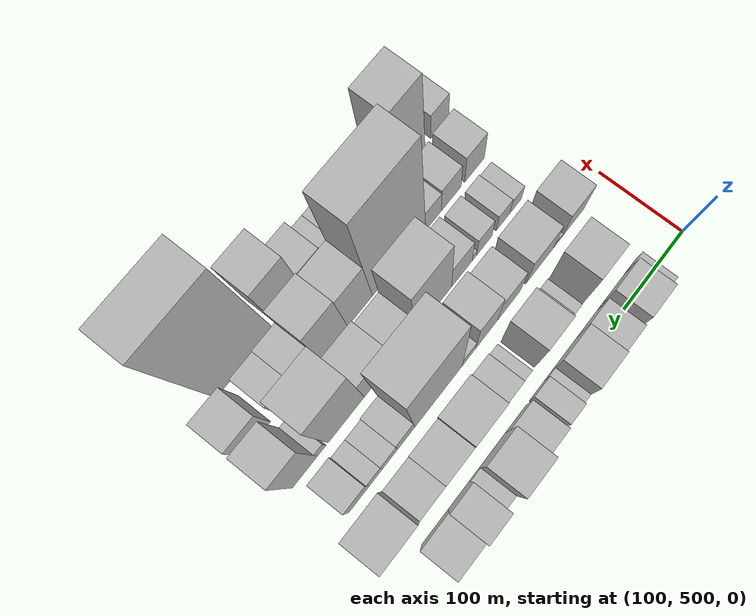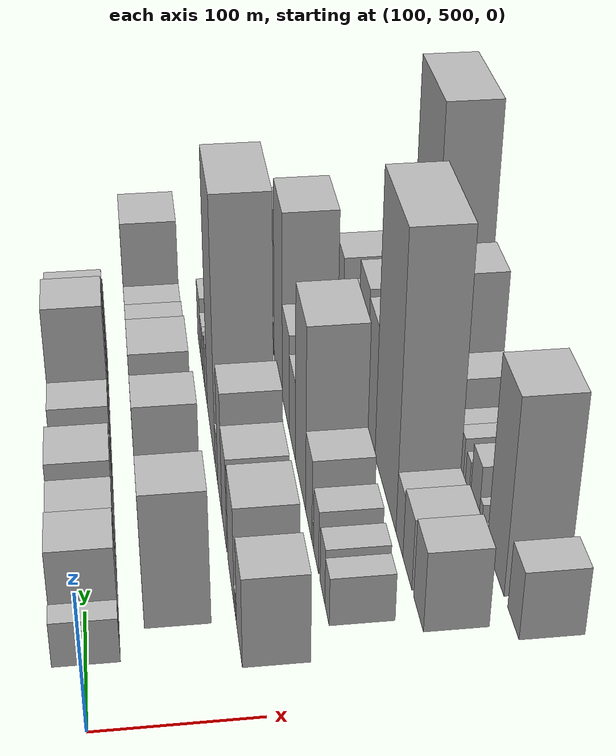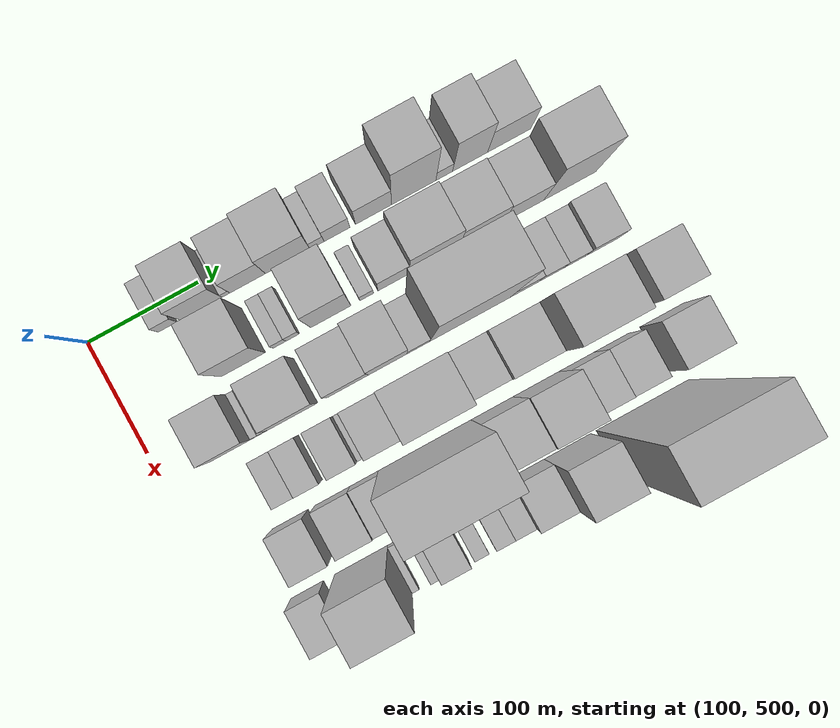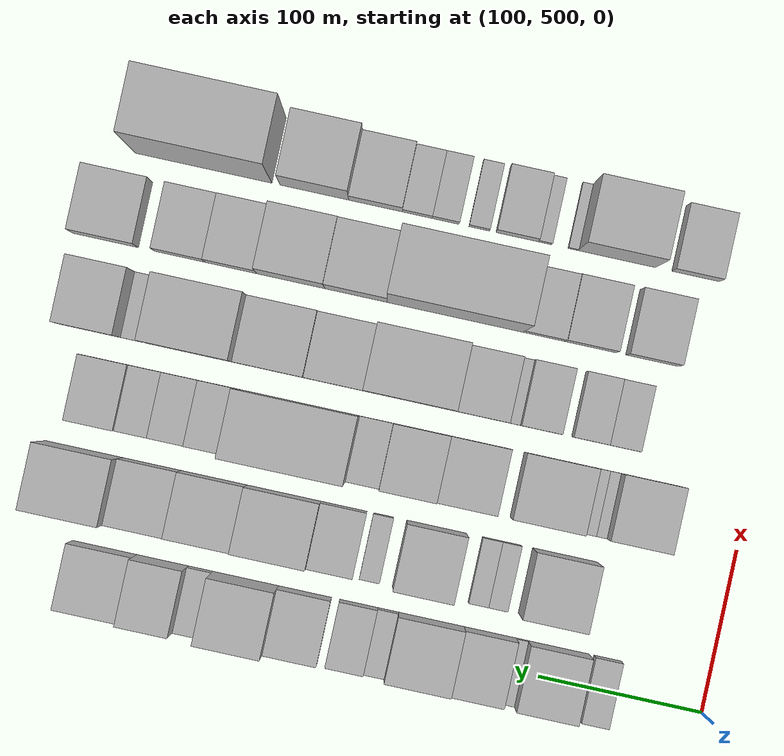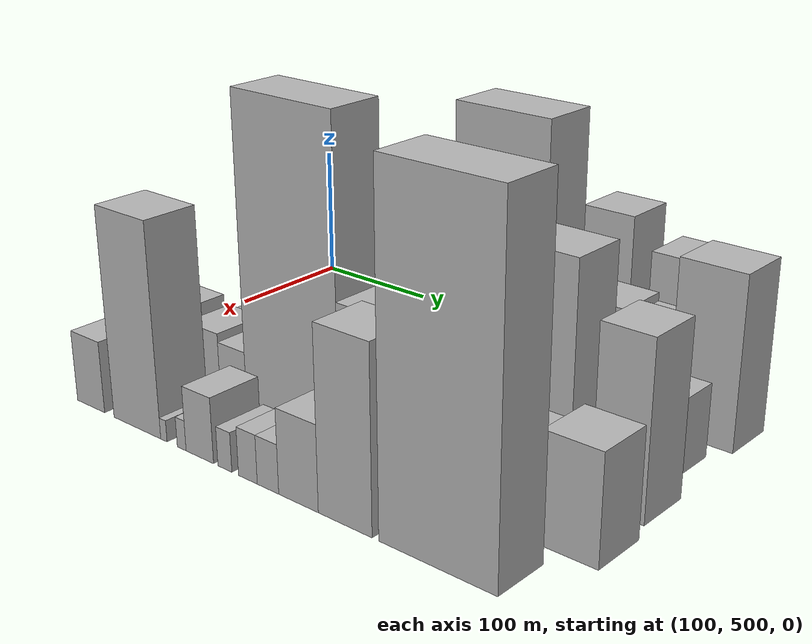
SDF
<sdf version="1.6">
 <world name="default">
  <model name="building_48">
   <static>1</static>
   <pose>100.0000 562.2270 0 0.000000 0.000000 0.000000</pose>
   <link name="link">
    <pose>0 0 16.50 0 0 0</pose>
    <collision name="collision"><geometry><box><size>40.0000 16.8446 33.0000</size></box></geometry></collision>
    <visual name="visual">
     <cast_shadows>0</cast_shadows>
     <geometry><box><size>40.0000 16.8446 33.0000</size></box></geometry>
     <material>
      <script>
       <uri>model://HANNAS_wall/materials/scripts</uri>
       <uri>model://HANNAS_wall/materials/textures</uri>
       <name>vrc/HANNAS_wall</name>
      </script>
     </material>
    </visual>
   </link>
  </model>
  <model name="building_49">
   <static>1</static>
   <pose>100.0000 592.3700 0 0.000000 0.000000 0.000000</pose>
   <link name="link">
    <pose>0 0 34.50 0 0 0</pose>
    <collision name="collision"><geometry><box><size>40.0000 37.4415 69.0000</size></box></geometry></collision>
    <visual name="visual">
     <cast_shadows>0</cast_shadows>
     <geometry><box><size>40.0000 37.4415 69.0000</size></box></geometry>
     <material>
      <script>
       <uri>model://HANNAS_wall/materials/scripts</uri>
       <uri>model://HANNAS_wall/materials/textures</uri>
       <name>vrc/HANNAS_wall</name>
      </script>
     </material>
    </visual>
   </link>
  </model>
  <model name="building_50">
   <static>1</static>
   <pose>100.0000 614.6938 0 0.000000 0.000000 0.000000</pose>
   <link name="link">
    <pose>0 0 7.50 0 0 0</pose>
    <collision name="collision"><geometry><box><size>40.0000 7.2062 15.0000</size></box></geometry></collision>
    <visual name="visual">
     <cast_shadows>0</cast_shadows>
     <geometry><box><size>40.0000 7.2062 15.0000</size></box></geometry>
     <material>
      <script>
       <uri>model://HANNAS_wall/materials/scripts</uri>
       <uri>model://HANNAS_wall/materials/textures</uri>
       <name>vrc/HANNAS_wall</name>
      </script>
     </material>
    </visual>
   </link>
  </model>
  <model name="building_51">
   <static>1</static>
   <pose>100.0000 634.3239 0 0.000000 0.000000 0.000000</pose>
   <link name="link">
    <pose>0 0 31.50 0 0 0</pose>
    <collision name="collision"><geometry><box><size>40.0000 32.0539 63.0000</size></box></geometry></collision>
    <visual name="visual">
     <cast_shadows>0</cast_shadows>
     <geometry><box><size>40.0000 32.0539 63.0000</size></box></geometry>
     <material>
      <script>
       <uri>model://HANNAS_wall/materials/scripts</uri>
       <uri>model://HANNAS_wall/materials/textures</uri>
       <name>vrc/HANNAS_wall</name>
      </script>
     </material>
    </visual>
   </link>
  </model>
  <model name="building_52">
   <static>1</static>
   <pose>100.0000 670.5384 0 0.000000 0.000000 0.000000</pose>
   <link name="link">
    <pose>0 0 37.50 0 0 0</pose>
    <collision name="collision"><geometry><box><size>40.0000 40.3753 75.0000</size></box></geometry></collision>
    <visual name="visual">
     <cast_shadows>0</cast_shadows>
     <geometry><box><size>40.0000 40.3753 75.0000</size></box></geometry>
     <material>
      <script>
       <uri>model://HANNAS_wall/materials/scripts</uri>
       <uri>model://HANNAS_wall/materials/textures</uri>
       <name>vrc/HANNAS_wall</name>
      </script>
     </material>
    </visual>
   </link>
  </model>
  <model name="building_53">
   <static>1</static>
   <pose>100.0000 697.0407 0 0.000000 0.000000 0.000000</pose>
   <link name="link">
    <pose>0 0 13.50 0 0 0</pose>
    <collision name="collision"><geometry><box><size>40.0000 12.6293 27.0000</size></box></geometry></collision>
    <visual name="visual">
     <cast_shadows>0</cast_shadows>
     <geometry><box><size>40.0000 12.6293 27.0000</size></box></geometry>
     <material>
      <script>
       <uri>model://HANNAS_wall/materials/scripts</uri>
       <uri>model://HANNAS_wall/materials/textures</uri>
       <name>vrc/HANNAS_wall</name>
      </script>
     </material>
    </visual>
   </link>
  </model>
  <model name="building_54">
   <static>1</static>
   <pose>100.0000 715.0363 0 0.000000 0.000000 0.000000</pose>
   <link name="link">
    <pose>0 0 22.50 0 0 0</pose>
    <collision name="collision"><geometry><box><size>40.0000 23.3619 45.0000</size></box></geometry></collision>
    <visual name="visual">
     <cast_shadows>0</cast_shadows>
     <geometry><box><size>40.0000 23.3619 45.0000</size></box></geometry>
     <material>
      <script>
       <uri>model://HANNAS_wall/materials/scripts</uri>
       <uri>model://HANNAS_wall/materials/textures</uri>
       <name>vrc/HANNAS_wall</name>
      </script>
     </material>
    </visual>
   </link>
  </model>
  <model name="building_55">
   <static>1</static>
   <pose>100.0000 747.9944 0 0.000000 0.000000 0.000000</pose>
   <link name="link">
    <pose>0 0 30.00 0 0 0</pose>
    <collision name="collision"><geometry><box><size>40.0000 32.5543 60.0000</size></box></geometry></collision>
    <visual name="visual">
     <cast_shadows>0</cast_shadows>
     <geometry><box><size>40.0000 32.5543 60.0000</size></box></geometry>
     <material>
      <script>
       <uri>model://HANNAS_wall/materials/scripts</uri>
       <uri>model://HANNAS_wall/materials/textures</uri>
       <name>vrc/HANNAS_wall</name>
      </script>
     </material>
    </visual>
   </link>
  </model>
  <model name="building_56">
   <static>1</static>
   <pose>100.0000 784.3968 0 0.000000 0.000000 0.000000</pose>
   <link name="link">
    <pose>0 0 58.50 0 0 0</pose>
    <collision name="collision"><geometry><box><size>40.0000 40.2505 117.0000</size></box></geometry></collision>
    <visual name="visual">
     <cast_shadows>0</cast_shadows>
     <geometry><box><size>40.0000 40.2505 117.0000</size></box></geometry>
     <material>
      <script>
       <uri>model://HANNAS_wall/materials/scripts</uri>
       <uri>model://HANNAS_wall/materials/textures</uri>
       <name>vrc/HANNAS_wall</name>
      </script>
     </material>
    </visual>
   </link>
  </model>
  <model name="building_57">
   <static>1</static>
   <pose>100.0000 812.0516 0 0.000000 0.000000 0.000000</pose>
   <link name="link">
    <pose>0 0 15.00 0 0 0</pose>
    <collision name="collision"><geometry><box><size>40.0000 15.0590 30.0000</size></box></geometry></collision>
    <visual name="visual">
     <cast_shadows>0</cast_shadows>
     <geometry><box><size>40.0000 15.0590 30.0000</size></box></geometry>
     <material>
      <script>
       <uri>model://HANNAS_wall/materials/scripts</uri>
       <uri>model://HANNAS_wall/materials/textures</uri>
       <name>vrc/HANNAS_wall</name>
      </script>
     </material>
    </visual>
   </link>
  </model>
  <model name="building_58">
   <static>1</static>
   <pose>100.0000 835.4757 0 0.000000 0.000000 0.000000</pose>
   <link name="link">
    <pose>0 0 48.00 0 0 0</pose>
    <collision name="collision"><geometry><box><size>40.0000 31.7892 96.0000</size></box></geometry></collision>
    <visual name="visual">
     <cast_shadows>0</cast_shadows>
     <geometry><box><size>40.0000 31.7892 96.0000</size></box></geometry>
     <material>
      <script>
       <uri>model://HANNAS_wall/materials/scripts</uri>
       <uri>model://HANNAS_wall/materials/textures</uri>
       <name>vrc/HANNAS_wall</name>
      </script>
     </material>
    </visual>
   </link>
  </model>
  <model name="building_59">
   <static>1</static>
   <pose>100.0000 871.0971 0 0.000000 0.000000 0.000000</pose>
   <link name="link">
    <pose>0 0 33.00 0 0 0</pose>
    <collision name="collision"><geometry><box><size>40.0000 39.4536 66.0000</size></box></geometry></collision>
    <visual name="visual">
     <cast_shadows>0</cast_shadows>
     <geometry><box><size>40.0000 39.4536 66.0000</size></box></geometry>
     <material>
      <script>
       <uri>model://HANNAS_wall/materials/scripts</uri>
       <uri>model://HANNAS_wall/materials/textures</uri>
       <name>vrc/HANNAS_wall</name>
      </script>
     </material>
    </visual>
   </link>
  </model>
  <model name="building_102">
   <static>1</static>
   <pose>155.0000 600.6701 0 0.000000 0.000000 0.000000</pose>
   <link name="link">
    <pose>0 0 49.50 0 0 0</pose>
    <collision name="collision"><geometry><box><size>40.0000 39.4154 99.0000</size></box></geometry></collision>
    <visual name="visual">
     <cast_shadows>0</cast_shadows>
     <geometry><box><size>40.0000 39.4154 99.0000</size></box></geometry>
     <material>
      <script>
       <uri>model://HANNAS_wall/materials/scripts</uri>
       <uri>model://HANNAS_wall/materials/textures</uri>
       <name>vrc/HANNAS_wall</name>
      </script>
     </material>
    </visual>
   </link>
  </model>
  <model name="building_103">
   <static>1</static>
   <pose>155.0000 633.2326 0 0.000000 0.000000 0.000000</pose>
   <link name="link">
    <pose>0 0 13.50 0 0 0</pose>
    <collision name="collision"><geometry><box><size>40.0000 11.7096 27.0000</size></box></geometry></collision>
    <visual name="visual">
     <cast_shadows>0</cast_shadows>
     <geometry><box><size>40.0000 11.7096 27.0000</size></box></geometry>
     <material>
      <script>
       <uri>model://HANNAS_wall/materials/scripts</uri>
       <uri>model://HANNAS_wall/materials/textures</uri>
       <name>vrc/HANNAS_wall</name>
      </script>
     </material>
    </visual>
   </link>
  </model>
  <model name="building_104">
   <static>1</static>
   <pose>155.0000 645.1596 0 0.000000 0.000000 0.000000</pose>
   <link name="link">
    <pose>0 0 13.50 0 0 0</pose>
    <collision name="collision"><geometry><box><size>40.0000 12.1444 27.0000</size></box></geometry></collision>
    <visual name="visual">
     <cast_shadows>0</cast_shadows>
     <geometry><box><size>40.0000 12.1444 27.0000</size></box></geometry>
     <material>
      <script>
       <uri>model://HANNAS_wall/materials/scripts</uri>
       <uri>model://HANNAS_wall/materials/textures</uri>
       <name>vrc/HANNAS_wall</name>
      </script>
     </material>
    </visual>
   </link>
  </model>
  <model name="building_105">
   <static>1</static>
   <pose>155.0000 679.4406 0 0.000000 0.000000 0.000000</pose>
   <link name="link">
    <pose>0 0 52.50 0 0 0</pose>
    <collision name="collision"><geometry><box><size>40.0000 36.4175 105.0000</size></box></geometry></collision>
    <visual name="visual">
     <cast_shadows>0</cast_shadows>
     <geometry><box><size>40.0000 36.4175 105.0000</size></box></geometry>
     <material>
      <script>
       <uri>model://HANNAS_wall/materials/scripts</uri>
       <uri>model://HANNAS_wall/materials/textures</uri>
       <name>vrc/HANNAS_wall</name>
      </script>
     </material>
    </visual>
   </link>
  </model>
  <model name="building_106">
   <static>1</static>
   <pose>155.0000 711.8317 0 0.000000 0.000000 0.000000</pose>
   <link name="link">
    <pose>0 0 13.50 0 0 0</pose>
    <collision name="collision"><geometry><box><size>40.0000 12.3648 27.0000</size></box></geometry></collision>
    <visual name="visual">
     <cast_shadows>0</cast_shadows>
     <geometry><box><size>40.0000 12.3648 27.0000</size></box></geometry>
     <material>
      <script>
       <uri>model://HANNAS_wall/materials/scripts</uri>
       <uri>model://HANNAS_wall/materials/textures</uri>
       <name>vrc/HANNAS_wall</name>
      </script>
     </material>
    </visual>
   </link>
  </model>
  <model name="building_107">
   <static>1</static>
   <pose>155.0000 736.0776 0 0.000000 0.000000 0.000000</pose>
   <link name="link">
    <pose>0 0 27.00 0 0 0</pose>
    <collision name="collision"><geometry><box><size>40.0000 28.1271 54.0000</size></box></geometry></collision>
    <visual name="visual">
     <cast_shadows>0</cast_shadows>
     <geometry><box><size>40.0000 28.1271 54.0000</size></box></geometry>
     <material>
      <script>
       <uri>model://HANNAS_wall/materials/scripts</uri>
       <uri>model://HANNAS_wall/materials/textures</uri>
       <name>vrc/HANNAS_wall</name>
      </script>
     </material>
    </visual>
   </link>
  </model>
  <model name="building_108">
   <static>1</static>
   <pose>155.0000 772.9094 0 0.000000 0.000000 0.000000</pose>
   <link name="link">
    <pose>0 0 43.50 0 0 0</pose>
    <collision name="collision"><geometry><box><size>40.0000 45.5365 87.0000</size></box></geometry></collision>
    <visual name="visual">
     <cast_shadows>0</cast_shadows>
     <geometry><box><size>40.0000 45.5365 87.0000</size></box></geometry>
     <material>
      <script>
       <uri>model://HANNAS_wall/materials/scripts</uri>
       <uri>model://HANNAS_wall/materials/textures</uri>
       <name>vrc/HANNAS_wall</name>
      </script>
     </material>
    </visual>
   </link>
  </model>
  <model name="building_109">
   <static>1</static>
   <pose>155.0000 815.8161 0 0.000000 0.000000 0.000000</pose>
   <link name="link">
    <pose>0 0 37.50 0 0 0</pose>
    <collision name="collision"><geometry><box><size>40.0000 40.2768 75.0000</size></box></geometry></collision>
    <visual name="visual">
     <cast_shadows>0</cast_shadows>
     <geometry><box><size>40.0000 40.2768 75.0000</size></box></geometry>
     <material>
      <script>
       <uri>model://HANNAS_wall/materials/scripts</uri>
       <uri>model://HANNAS_wall/materials/textures</uri>
       <name>vrc/HANNAS_wall</name>
      </script>
     </material>
    </visual>
   </link>
  </model>
  <model name="building_110">
   <static>1</static>
   <pose>155.0000 854.0001 0 0.000000 0.000000 0.000000</pose>
   <link name="link">
    <pose>0 0 34.50 0 0 0</pose>
    <collision name="collision"><geometry><box><size>40.0000 36.0911 69.0000</size></box></geometry></collision>
    <visual name="visual">
     <cast_shadows>0</cast_shadows>
     <geometry><box><size>40.0000 36.0911 69.0000</size></box></geometry>
     <material>
      <script>
       <uri>model://HANNAS_wall/materials/scripts</uri>
       <uri>model://HANNAS_wall/materials/textures</uri>
       <name>vrc/HANNAS_wall</name>
      </script>
     </material>
    </visual>
   </link>
  </model>
  <model name="building_111">
   <static>1</static>
   <pose>155.0000 895.8125 0 0.000000 0.000000 0.000000</pose>
   <link name="link">
    <pose>0 0 60.00 0 0 0</pose>
    <collision name="collision"><geometry><box><size>40.0000 47.5338 120.0000</size></box></geometry></collision>
    <visual name="visual">
     <cast_shadows>0</cast_shadows>
     <geometry><box><size>40.0000 47.5338 120.0000</size></box></geometry>
     <material>
      <script>
       <uri>model://HANNAS_wall/materials/scripts</uri>
       <uri>model://HANNAS_wall/materials/textures</uri>
       <name>vrc/HANNAS_wall</name>
      </script>
     </material>
    </visual>
   </link>
  </model>
  <model name="building_152">
   <static>1</static>
   <pose>210.0000 559.6286 0 0.000000 0.000000 0.000000</pose>
   <link name="link">
    <pose>0 0 33.00 0 0 0</pose>
    <collision name="collision"><geometry><box><size>40.0000 37.8561 66.0000</size></box></geometry></collision>
    <visual name="visual">
     <cast_shadows>0</cast_shadows>
     <geometry><box><size>40.0000 37.8561 66.0000</size></box></geometry>
     <material>
      <script>
       <uri>model://HANNAS_wall/materials/scripts</uri>
       <uri>model://HANNAS_wall/materials/textures</uri>
       <name>vrc/HANNAS_wall</name>
      </script>
     </material>
    </visual>
   </link>
  </model>
  <model name="building_153">
   <static>1</static>
   <pose>210.0000 581.8511 0 0.000000 0.000000 0.000000</pose>
   <link name="link">
    <pose>0 0 7.50 0 0 0</pose>
    <collision name="collision"><geometry><box><size>40.0000 6.5889 15.0000</size></box></geometry></collision>
    <visual name="visual">
     <cast_shadows>0</cast_shadows>
     <geometry><box><size>40.0000 6.5889 15.0000</size></box></geometry>
     <material>
      <script>
       <uri>model://HANNAS_wall/materials/scripts</uri>
       <uri>model://HANNAS_wall/materials/textures</uri>
       <name>vrc/HANNAS_wall</name>
      </script>
     </material>
    </visual>
   </link>
  </model>
  <model name="building_154">
   <static>1</static>
   <pose>210.0000 589.4525 0 0.000000 0.000000 0.000000</pose>
   <link name="link">
    <pose>0 0 9.00 0 0 0</pose>
    <collision name="collision"><geometry><box><size>40.0000 8.6140 18.0000</size></box></geometry></collision>
    <visual name="visual">
     <cast_shadows>0</cast_shadows>
     <geometry><box><size>40.0000 8.6140 18.0000</size></box></geometry>
     <material>
      <script>
       <uri>model://HANNAS_wall/materials/scripts</uri>
       <uri>model://HANNAS_wall/materials/textures</uri>
       <name>vrc/HANNAS_wall</name>
      </script>
     </material>
    </visual>
   </link>
  </model>
  <model name="building_155">
   <static>1</static>
   <pose>210.0000 615.6881 0 0.000000 0.000000 0.000000</pose>
   <link name="link">
    <pose>0 0 37.50 0 0 0</pose>
    <collision name="collision"><geometry><box><size>40.0000 43.8572 75.0000</size></box></geometry></collision>
    <visual name="visual">
     <cast_shadows>0</cast_shadows>
     <geometry><box><size>40.0000 43.8572 75.0000</size></box></geometry>
     <material>
      <script>
       <uri>model://HANNAS_wall/materials/scripts</uri>
       <uri>model://HANNAS_wall/materials/textures</uri>
       <name>vrc/HANNAS_wall</name>
      </script>
     </material>
    </visual>
   </link>
  </model>
  <model name="building_156">
   <static>1</static>
   <pose>210.0000 665.0278 0 0.000000 0.000000 0.000000</pose>
   <link name="link">
    <pose>0 0 36.00 0 0 0</pose>
    <collision name="collision"><geometry><box><size>40.0000 36.8223 72.0000</size></box></geometry></collision>
    <visual name="visual">
     <cast_shadows>0</cast_shadows>
     <geometry><box><size>40.0000 36.8223 72.0000</size></box></geometry>
     <material>
      <script>
       <uri>model://HANNAS_wall/materials/scripts</uri>
       <uri>model://HANNAS_wall/materials/textures</uri>
       <name>vrc/HANNAS_wall</name>
      </script>
     </material>
    </visual>
   </link>
  </model>
  <model name="building_157">
   <static>1</static>
   <pose>210.0000 700.7204 0 0.000000 0.000000 0.000000</pose>
   <link name="link">
    <pose>0 0 48.00 0 0 0</pose>
    <collision name="collision"><geometry><box><size>40.0000 34.5629 96.0000</size></box></geometry></collision>
    <visual name="visual">
     <cast_shadows>0</cast_shadows>
     <geometry><box><size>40.0000 34.5629 96.0000</size></box></geometry>
     <material>
      <script>
       <uri>model://HANNAS_wall/materials/scripts</uri>
       <uri>model://HANNAS_wall/materials/textures</uri>
       <name>vrc/HANNAS_wall</name>
      </script>
     </material>
    </visual>
   </link>
  </model>
  <model name="building_158">
   <static>1</static>
   <pose>210.0000 728.2516 0 0.000000 0.000000 0.000000</pose>
   <link name="link">
    <pose>0 0 18.00 0 0 0</pose>
    <collision name="collision"><geometry><box><size>40.0000 20.4996 36.0000</size></box></geometry></collision>
    <visual name="visual">
     <cast_shadows>0</cast_shadows>
     <geometry><box><size>40.0000 20.4996 36.0000</size></box></geometry>
     <material>
      <script>
       <uri>model://HANNAS_wall/materials/scripts</uri>
       <uri>model://HANNAS_wall/materials/textures</uri>
       <name>vrc/HANNAS_wall</name>
      </script>
     </material>
    </visual>
   </link>
  </model>
  <model name="building_159">
   <static>1</static>
   <pose>210.0000 774.8566 0 0.000000 0.000000 0.000000</pose>
   <link name="link">
    <pose>0 0 103.50 0 0 0</pose>
    <collision name="collision"><geometry><box><size>40.0000 72.7103 207.0000</size></box></geometry></collision>
    <visual name="visual">
     <cast_shadows>0</cast_shadows>
     <geometry><box><size>40.0000 72.7103 207.0000</size></box></geometry>
     <material>
      <script>
       <uri>model://HANNAS_wall/materials/scripts</uri>
       <uri>model://HANNAS_wall/materials/textures</uri>
       <name>vrc/HANNAS_wall</name>
      </script>
     </material>
    </visual>
   </link>
  </model>
  <model name="building_160">
   <static>1</static>
   <pose>210.0000 823.9241 0 0.000000 0.000000 0.000000</pose>
   <link name="link">
    <pose>0 0 24.00 0 0 0</pose>
    <collision name="collision"><geometry><box><size>40.0000 25.4247 48.0000</size></box></geometry></collision>
    <visual name="visual">
     <cast_shadows>0</cast_shadows>
     <geometry><box><size>40.0000 25.4247 48.0000</size></box></geometry>
     <material>
      <script>
       <uri>model://HANNAS_wall/materials/scripts</uri>
       <uri>model://HANNAS_wall/materials/textures</uri>
       <name>vrc/HANNAS_wall</name>
      </script>
     </material>
    </visual>
   </link>
  </model>
  <model name="building_161">
   <static>1</static>
   <pose>210.0000 847.8609 0 0.000000 0.000000 0.000000</pose>
   <link name="link">
    <pose>0 0 19.50 0 0 0</pose>
    <collision name="collision"><geometry><box><size>40.0000 22.4490 39.0000</size></box></geometry></collision>
    <visual name="visual">
     <cast_shadows>0</cast_shadows>
     <geometry><box><size>40.0000 22.4490 39.0000</size></box></geometry>
     <material>
      <script>
       <uri>model://HANNAS_wall/materials/scripts</uri>
       <uri>model://HANNAS_wall/materials/textures</uri>
       <name>vrc/HANNAS_wall</name>
      </script>
     </material>
    </visual>
   </link>
  </model>
  <model name="building_162">
   <static>1</static>
   <pose>210.0000 869.0447 0 0.000000 0.000000 0.000000</pose>
   <link name="link">
    <pose>0 0 19.50 0 0 0</pose>
    <collision name="collision"><geometry><box><size>40.0000 19.9188 39.0000</size></box></geometry></collision>
    <visual name="visual">
     <cast_shadows>0</cast_shadows>
     <geometry><box><size>40.0000 19.9188 39.0000</size></box></geometry>
     <material>
      <script>
       <uri>model://HANNAS_wall/materials/scripts</uri>
       <uri>model://HANNAS_wall/materials/textures</uri>
       <name>vrc/HANNAS_wall</name>
      </script>
     </material>
    </visual>
   </link>
  </model>
  <model name="building_163">
   <static>1</static>
   <pose>210.0000 894.0465 0 0.000000 0.000000 0.000000</pose>
   <link name="link">
    <pose>0 0 25.50 0 0 0</pose>
    <collision name="collision"><geometry><box><size>40.0000 30.0847 51.0000</size></box></geometry></collision>
    <visual name="visual">
     <cast_shadows>0</cast_shadows>
     <geometry><box><size>40.0000 30.0847 51.0000</size></box></geometry>
     <material>
      <script>
       <uri>model://HANNAS_wall/materials/scripts</uri>
       <uri>model://HANNAS_wall/materials/textures</uri>
       <name>vrc/HANNAS_wall</name>
      </script>
     </material>
    </visual>
   </link>
  </model>
  <model name="building_209">
   <static>1</static>
   <pose>265.0000 580.2457 0 0.000000 0.000000 0.000000</pose>
   <link name="link">
    <pose>0 0 18.00 0 0 0</pose>
    <collision name="collision"><geometry><box><size>40.0000 19.4634 36.0000</size></box></geometry></collision>
    <visual name="visual">
     <cast_shadows>0</cast_shadows>
     <geometry><box><size>40.0000 19.4634 36.0000</size></box></geometry>
     <material>
      <script>
       <uri>model://HANNAS_wall/materials/scripts</uri>
       <uri>model://HANNAS_wall/materials/textures</uri>
       <name>vrc/HANNAS_wall</name>
      </script>
     </material>
    </visual>
   </link>
  </model>
  <model name="building_210">
   <static>1</static>
   <pose>265.0000 600.9082 0 0.000000 0.000000 0.000000</pose>
   <link name="link">
    <pose>0 0 21.00 0 0 0</pose>
    <collision name="collision"><geometry><box><size>40.0000 21.8617 42.0000</size></box></geometry></collision>
    <visual name="visual">
     <cast_shadows>0</cast_shadows>
     <geometry><box><size>40.0000 21.8617 42.0000</size></box></geometry>
     <material>
      <script>
       <uri>model://HANNAS_wall/materials/scripts</uri>
       <uri>model://HANNAS_wall/materials/textures</uri>
       <name>vrc/HANNAS_wall</name>
      </script>
     </material>
    </visual>
   </link>
  </model>
  <model name="building_211">
   <static>1</static>
   <pose>265.0000 631.2698 0 0.000000 0.000000 0.000000</pose>
   <link name="link">
    <pose>0 0 24.00 0 0 0</pose>
    <collision name="collision"><geometry><box><size>40.0000 24.8615 48.0000</size></box></geometry></collision>
    <visual name="visual">
     <cast_shadows>0</cast_shadows>
     <geometry><box><size>40.0000 24.8615 48.0000</size></box></geometry>
     <material>
      <script>
       <uri>model://HANNAS_wall/materials/scripts</uri>
       <uri>model://HANNAS_wall/materials/textures</uri>
       <name>vrc/HANNAS_wall</name>
      </script>
     </material>
    </visual>
   </link>
  </model>
  <model name="building_212">
   <static>1</static>
   <pose>265.0000 647.3736 0 0.000000 0.000000 0.000000</pose>
   <link name="link">
    <pose>0 0 9.00 0 0 0</pose>
    <collision name="collision"><geometry><box><size>40.0000 7.3461 18.0000</size></box></geometry></collision>
    <visual name="visual">
     <cast_shadows>0</cast_shadows>
     <geometry><box><size>40.0000 7.3461 18.0000</size></box></geometry>
     <material>
      <script>
       <uri>model://HANNAS_wall/materials/scripts</uri>
       <uri>model://HANNAS_wall/materials/textures</uri>
       <name>vrc/HANNAS_wall</name>
      </script>
     </material>
    </visual>
   </link>
  </model>
  <model name="building_213">
   <static>1</static>
   <pose>265.0000 667.4022 0 0.000000 0.000000 0.000000</pose>
   <link name="link">
    <pose>0 0 31.50 0 0 0</pose>
    <collision name="collision"><geometry><box><size>40.0000 32.7109 63.0000</size></box></geometry></collision>
    <visual name="visual">
     <cast_shadows>0</cast_shadows>
     <geometry><box><size>40.0000 32.7109 63.0000</size></box></geometry>
     <material>
      <script>
       <uri>model://HANNAS_wall/materials/scripts</uri>
       <uri>model://HANNAS_wall/materials/textures</uri>
       <name>vrc/HANNAS_wall</name>
      </script>
     </material>
    </visual>
   </link>
  </model>
  <model name="building_214">
   <static>1</static>
   <pose>265.0000 711.6143 0 0.000000 0.000000 0.000000</pose>
   <link name="link">
    <pose>0 0 70.50 0 0 0</pose>
    <collision name="collision"><geometry><box><size>40.0000 55.7134 141.0000</size></box></geometry></collision>
    <visual name="visual">
     <cast_shadows>0</cast_shadows>
     <geometry><box><size>40.0000 55.7134 141.0000</size></box></geometry>
     <material>
      <script>
       <uri>model://HANNAS_wall/materials/scripts</uri>
       <uri>model://HANNAS_wall/materials/textures</uri>
       <name>vrc/HANNAS_wall</name>
      </script>
     </material>
    </visual>
   </link>
  </model>
  <model name="building_215">
   <static>1</static>
   <pose>265.0000 757.6588 0 0.000000 0.000000 0.000000</pose>
   <link name="link">
    <pose>0 0 31.50 0 0 0</pose>
    <collision name="collision"><geometry><box><size>40.0000 36.3757 63.0000</size></box></geometry></collision>
    <visual name="visual">
     <cast_shadows>0</cast_shadows>
     <geometry><box><size>40.0000 36.3757 63.0000</size></box></geometry>
     <material>
      <script>
       <uri>model://HANNAS_wall/materials/scripts</uri>
       <uri>model://HANNAS_wall/materials/textures</uri>
       <name>vrc/HANNAS_wall</name>
      </script>
     </material>
    </visual>
   </link>
  </model>
  <model name="building_216">
   <static>1</static>
   <pose>265.0000 797.0554 0 0.000000 0.000000 0.000000</pose>
   <link name="link">
    <pose>0 0 39.00 0 0 0</pose>
    <collision name="collision"><geometry><box><size>40.0000 42.4175 78.0000</size></box></geometry></collision>
    <visual name="visual">
     <cast_shadows>0</cast_shadows>
     <geometry><box><size>40.0000 42.4175 78.0000</size></box></geometry>
     <material>
      <script>
       <uri>model://HANNAS_wall/materials/scripts</uri>
       <uri>model://HANNAS_wall/materials/textures</uri>
       <name>vrc/HANNAS_wall</name>
      </script>
     </material>
    </visual>
   </link>
  </model>
  <model name="building_217">
   <static>1</static>
   <pose>265.0000 845.1817 0 0.000000 0.000000 0.000000</pose>
   <link name="link">
    <pose>0 0 75.00 0 0 0</pose>
    <collision name="collision"><geometry><box><size>40.0000 53.8350 150.0000</size></box></geometry></collision>
    <visual name="visual">
     <cast_shadows>0</cast_shadows>
     <geometry><box><size>40.0000 53.8350 150.0000</size></box></geometry>
     <material>
      <script>
       <uri>model://HANNAS_wall/materials/scripts</uri>
       <uri>model://HANNAS_wall/materials/textures</uri>
       <name>vrc/HANNAS_wall</name>
      </script>
     </material>
    </visual>
   </link>
  </model>
  <model name="building_218">
   <static>1</static>
   <pose>265.0000 881.3281 0 0.000000 0.000000 0.000000</pose>
   <link name="link">
    <pose>0 0 13.50 0 0 0</pose>
    <collision name="collision"><geometry><box><size>40.0000 12.4579 27.0000</size></box></geometry></collision>
    <visual name="visual">
     <cast_shadows>0</cast_shadows>
     <geometry><box><size>40.0000 12.4579 27.0000</size></box></geometry>
     <material>
      <script>
       <uri>model://HANNAS_wall/materials/scripts</uri>
       <uri>model://HANNAS_wall/materials/textures</uri>
       <name>vrc/HANNAS_wall</name>
      </script>
     </material>
    </visual>
   </link>
  </model>
  <model name="building_219">
   <static>1</static>
   <pose>265.0000 905.8194 0 0.000000 0.000000 0.000000</pose>
   <link name="link">
    <pose>0 0 58.50 0 0 0</pose>
    <collision name="collision"><geometry><box><size>40.0000 36.5248 117.0000</size></box></geometry></collision>
    <visual name="visual">
     <cast_shadows>0</cast_shadows>
     <geometry><box><size>40.0000 36.5248 117.0000</size></box></geometry>
     <material>
      <script>
       <uri>model://HANNAS_wall/materials/scripts</uri>
       <uri>model://HANNAS_wall/materials/textures</uri>
       <name>vrc/HANNAS_wall</name>
      </script>
     </material>
    </visual>
   </link>
  </model>
  <model name="building_265">
   <static>1</static>
   <pose>320.0000 574.5855 0 0.000000 0.000000 0.000000</pose>
   <link name="link">
    <pose>0 0 30.00 0 0 0</pose>
    <collision name="collision"><geometry><box><size>40.0000 32.1614 60.0000</size></box></geometry></collision>
    <visual name="visual">
     <cast_shadows>0</cast_shadows>
     <geometry><box><size>40.0000 32.1614 60.0000</size></box></geometry>
     <material>
      <script>
       <uri>model://HANNAS_wall/materials/scripts</uri>
       <uri>model://HANNAS_wall/materials/textures</uri>
       <name>vrc/HANNAS_wall</name>
      </script>
     </material>
    </visual>
   </link>
  </model>
  <model name="building_266">
   <static>1</static>
   <pose>320.0000 612.4057 0 0.000000 0.000000 0.000000</pose>
   <link name="link">
    <pose>0 0 27.00 0 0 0</pose>
    <collision name="collision"><geometry><box><size>40.0000 31.4789 54.0000</size></box></geometry></collision>
    <visual name="visual">
     <cast_shadows>0</cast_shadows>
     <geometry><box><size>40.0000 31.4789 54.0000</size></box></geometry>
     <material>
      <script>
       <uri>model://HANNAS_wall/materials/scripts</uri>
       <uri>model://HANNAS_wall/materials/textures</uri>
       <name>vrc/HANNAS_wall</name>
      </script>
     </material>
    </visual>
   </link>
  </model>
  <model name="building_267">
   <static>1</static>
   <pose>320.0000 640.9474 0 0.000000 0.000000 0.000000</pose>
   <link name="link">
    <pose>0 0 24.00 0 0 0</pose>
    <collision name="collision"><geometry><box><size>40.0000 25.6046 48.0000</size></box></geometry></collision>
    <visual name="visual">
     <cast_shadows>0</cast_shadows>
     <geometry><box><size>40.0000 25.6046 48.0000</size></box></geometry>
     <material>
      <script>
       <uri>model://HANNAS_wall/materials/scripts</uri>
       <uri>model://HANNAS_wall/materials/textures</uri>
       <name>vrc/HANNAS_wall</name>
      </script>
     </material>
    </visual>
   </link>
  </model>
  <model name="building_268">
   <static>1</static>
   <pose>320.0000 695.5413 0 0.000000 0.000000 0.000000</pose>
   <link name="link">
    <pose>0 0 111.00 0 0 0</pose>
    <collision name="collision"><geometry><box><size>40.0000 83.5831 222.0000</size></box></geometry></collision>
    <visual name="visual">
     <cast_shadows>0</cast_shadows>
     <geometry><box><size>40.0000 83.5831 222.0000</size></box></geometry>
     <material>
      <script>
       <uri>model://HANNAS_wall/materials/scripts</uri>
       <uri>model://HANNAS_wall/materials/textures</uri>
       <name>vrc/HANNAS_wall</name>
      </script>
     </material>
    </visual>
   </link>
  </model>
  <model name="building_269">
   <static>1</static>
   <pose>320.0000 756.3772 0 0.000000 0.000000 0.000000</pose>
   <link name="link">
    <pose>0 0 52.50 0 0 0</pose>
    <collision name="collision"><geometry><box><size>40.0000 38.0888 105.0000</size></box></geometry></collision>
    <visual name="visual">
     <cast_shadows>0</cast_shadows>
     <geometry><box><size>40.0000 38.0888 105.0000</size></box></geometry>
     <material>
      <script>
       <uri>model://HANNAS_wall/materials/scripts</uri>
       <uri>model://HANNAS_wall/materials/textures</uri>
       <name>vrc/HANNAS_wall</name>
      </script>
     </material>
    </visual>
   </link>
  </model>
  <model name="building_270">
   <static>1</static>
   <pose>320.0000 796.1803 0 0.000000 0.000000 0.000000</pose>
   <link name="link">
    <pose>0 0 55.50 0 0 0</pose>
    <collision name="collision"><geometry><box><size>40.0000 41.5174 111.0000</size></box></geometry></collision>
    <visual name="visual">
     <cast_shadows>0</cast_shadows>
     <geometry><box><size>40.0000 41.5174 111.0000</size></box></geometry>
     <material>
      <script>
       <uri>model://HANNAS_wall/materials/scripts</uri>
       <uri>model://HANNAS_wall/materials/textures</uri>
       <name>vrc/HANNAS_wall</name>
      </script>
     </material>
    </visual>
   </link>
  </model>
  <model name="building_271">
   <static>1</static>
   <pose>320.0000 832.8714 0 0.000000 0.000000 0.000000</pose>
   <link name="link">
    <pose>0 0 31.50 0 0 0</pose>
    <collision name="collision"><geometry><box><size>40.0000 31.8648 63.0000</size></box></geometry></collision>
    <visual name="visual">
     <cast_shadows>0</cast_shadows>
     <geometry><box><size>40.0000 31.8648 63.0000</size></box></geometry>
     <material>
      <script>
       <uri>model://HANNAS_wall/materials/scripts</uri>
       <uri>model://HANNAS_wall/materials/textures</uri>
       <name>vrc/HANNAS_wall</name>
      </script>
     </material>
    </visual>
   </link>
  </model>
  <model name="building_272">
   <static>1</static>
   <pose>320.0000 864.4393 0 0.000000 0.000000 0.000000</pose>
   <link name="link">
    <pose>0 0 30.00 0 0 0</pose>
    <collision name="collision"><geometry><box><size>40.0000 31.2709 60.0000</size></box></geometry></collision>
    <visual name="visual">
     <cast_shadows>0</cast_shadows>
     <geometry><box><size>40.0000 31.2709 60.0000</size></box></geometry>
     <material>
      <script>
       <uri>model://HANNAS_wall/materials/scripts</uri>
       <uri>model://HANNAS_wall/materials/textures</uri>
       <name>vrc/HANNAS_wall</name>
      </script>
     </material>
    </visual>
   </link>
  </model>
  <model name="building_273">
   <static>1</static>
   <pose>320.0000 910.0868 0 0.000000 0.000000 0.000000</pose>
   <link name="link">
    <pose>0 0 36.00 0 0 0</pose>
    <collision name="collision"><geometry><box><size>40.0000 40.0241 72.0000</size></box></geometry></collision>
    <visual name="visual">
     <cast_shadows>0</cast_shadows>
     <geometry><box><size>40.0000 40.0241 72.0000</size></box></geometry>
     <material>
      <script>
       <uri>model://HANNAS_wall/materials/scripts</uri>
       <uri>model://HANNAS_wall/materials/textures</uri>
       <name>vrc/HANNAS_wall</name>
      </script>
     </material>
    </visual>
   </link>
  </model>
  <model name="building_313">
   <static>1</static>
   <pose>375.0000 559.7744 0 0.000000 0.000000 0.000000</pose>
   <link name="link">
    <pose>0 0 25.50 0 0 0</pose>
    <collision name="collision"><geometry><box><size>40.0000 29.2901 51.0000</size></box></geometry></collision>
    <visual name="visual">
     <cast_shadows>0</cast_shadows>
     <geometry><box><size>40.0000 29.2901 51.0000</size></box></geometry>
     <material>
      <script>
       <uri>model://HANNAS_wall/materials/scripts</uri>
       <uri>model://HANNAS_wall/materials/textures</uri>
       <name>vrc/HANNAS_wall</name>
      </script>
     </material>
    </visual>
   </link>
  </model>
  <model name="building_314">
   <static>1</static>
   <pose>375.0000 608.2173 0 0.000000 0.000000 0.000000</pose>
   <link name="link">
    <pose>0 0 73.50 0 0 0</pose>
    <collision name="collision"><geometry><box><size>40.0000 47.5956 147.0000</size></box></geometry></collision>
    <visual name="visual">
     <cast_shadows>0</cast_shadows>
     <geometry><box><size>40.0000 47.5956 147.0000</size></box></geometry>
     <material>
      <script>
       <uri>model://HANNAS_wall/materials/scripts</uri>
       <uri>model://HANNAS_wall/materials/textures</uri>
       <name>vrc/HANNAS_wall</name>
      </script>
     </material>
    </visual>
   </link>
  </model>
  <model name="building_315">
   <static>1</static>
   <pose>375.0000 635.1083 0 0.000000 0.000000 0.000000</pose>
   <link name="link">
    <pose>0 0 7.50 0 0 0</pose>
    <collision name="collision"><geometry><box><size>40.0000 6.1864 15.0000</size></box></geometry></collision>
    <visual name="visual">
     <cast_shadows>0</cast_shadows>
     <geometry><box><size>40.0000 6.1864 15.0000</size></box></geometry>
     <material>
      <script>
       <uri>model://HANNAS_wall/materials/scripts</uri>
       <uri>model://HANNAS_wall/materials/textures</uri>
       <name>vrc/HANNAS_wall</name>
      </script>
     </material>
    </visual>
   </link>
  </model>
  <model name="building_316">
   <static>1</static>
   <pose>375.0000 652.4254 0 0.000000 0.000000 0.000000</pose>
   <link name="link">
    <pose>0 0 10.50 0 0 0</pose>
    <collision name="collision"><geometry><box><size>40.0000 8.4478 21.0000</size></box></geometry></collision>
    <visual name="visual">
     <cast_shadows>0</cast_shadows>
     <geometry><box><size>40.0000 8.4478 21.0000</size></box></geometry>
     <material>
      <script>
       <uri>model://HANNAS_wall/materials/scripts</uri>
       <uri>model://HANNAS_wall/materials/textures</uri>
       <name>vrc/HANNAS_wall</name>
      </script>
     </material>
    </visual>
   </link>
  </model>
  <model name="building_317">
   <static>1</static>
   <pose>375.0000 669.5578 0 0.000000 0.000000 0.000000</pose>
   <link name="link">
    <pose>0 0 22.50 0 0 0</pose>
    <collision name="collision"><geometry><box><size>40.0000 25.8171 45.0000</size></box></geometry></collision>
    <visual name="visual">
     <cast_shadows>0</cast_shadows>
     <geometry><box><size>40.0000 25.8171 45.0000</size></box></geometry>
     <material>
      <script>
       <uri>model://HANNAS_wall/materials/scripts</uri>
       <uri>model://HANNAS_wall/materials/textures</uri>
       <name>vrc/HANNAS_wall</name>
      </script>
     </material>
    </visual>
   </link>
  </model>
  <model name="building_318">
   <static>1</static>
   <pose>375.0000 692.7873 0 0.000000 0.000000 0.000000</pose>
   <link name="link">
    <pose>0 0 13.50 0 0 0</pose>
    <collision name="collision"><geometry><box><size>40.0000 12.6419 27.0000</size></box></geometry></collision>
    <visual name="visual">
     <cast_shadows>0</cast_shadows>
     <geometry><box><size>40.0000 12.6419 27.0000</size></box></geometry>
     <material>
      <script>
       <uri>model://HANNAS_wall/materials/scripts</uri>
       <uri>model://HANNAS_wall/materials/textures</uri>
       <name>vrc/HANNAS_wall</name>
      </script>
     </material>
    </visual>
   </link>
  </model>
  <model name="building_319">
   <static>1</static>
   <pose>375.0000 713.3837 0 0.000000 0.000000 0.000000</pose>
   <link name="link">
    <pose>0 0 16.50 0 0 0</pose>
    <collision name="collision"><geometry><box><size>40.0000 16.5509 33.0000</size></box></geometry></collision>
    <visual name="visual">
     <cast_shadows>0</cast_shadows>
     <geometry><box><size>40.0000 16.5509 33.0000</size></box></geometry>
     <material>
      <script>
       <uri>model://HANNAS_wall/materials/scripts</uri>
       <uri>model://HANNAS_wall/materials/textures</uri>
       <name>vrc/HANNAS_wall</name>
      </script>
     </material>
    </visual>
   </link>
  </model>
  <model name="building_320">
   <static>1</static>
   <pose>375.0000 730.8789 0 0.000000 0.000000 0.000000</pose>
   <link name="link">
    <pose>0 0 16.50 0 0 0</pose>
    <collision name="collision"><geometry><box><size>40.0000 18.4395 33.0000</size></box></geometry></collision>
    <visual name="visual">
     <cast_shadows>0</cast_shadows>
     <geometry><box><size>40.0000 18.4395 33.0000</size></box></geometry>
     <material>
      <script>
       <uri>model://HANNAS_wall/materials/scripts</uri>
       <uri>model://HANNAS_wall/materials/textures</uri>
       <name>vrc/HANNAS_wall</name>
      </script>
     </material>
    </visual>
   </link>
  </model>
  <model name="building_321">
   <static>1</static>
   <pose>375.0000 756.5330 0 0.000000 0.000000 0.000000</pose>
   <link name="link">
    <pose>0 0 28.50 0 0 0</pose>
    <collision name="collision"><geometry><box><size>40.0000 32.8688 57.0000</size></box></geometry></collision>
    <visual name="visual">
     <cast_shadows>0</cast_shadows>
     <geometry><box><size>40.0000 32.8688 57.0000</size></box></geometry>
     <material>
      <script>
       <uri>model://HANNAS_wall/materials/scripts</uri>
       <uri>model://HANNAS_wall/materials/textures</uri>
       <name>vrc/HANNAS_wall</name>
      </script>
     </material>
    </visual>
   </link>
  </model>
  <model name="building_322">
   <static>1</static>
   <pose>375.0000 794.0438 0 0.000000 0.000000 0.000000</pose>
   <link name="link">
    <pose>0 0 60.00 0 0 0</pose>
    <collision name="collision"><geometry><box><size>40.0000 42.1527 120.0000</size></box></geometry></collision>
    <visual name="visual">
     <cast_shadows>0</cast_shadows>
     <geometry><box><size>40.0000 42.1527 120.0000</size></box></geometry>
     <material>
      <script>
       <uri>model://HANNAS_wall/materials/scripts</uri>
       <uri>model://HANNAS_wall/materials/textures</uri>
       <name>vrc/HANNAS_wall</name>
      </script>
     </material>
    </visual>
   </link>
  </model>
  <model name="building_323">
   <static>1</static>
   <pose>375.0000 862.1446 0 0.000000 0.000000 0.000000</pose>
   <link name="link">
    <pose>0 0 112.50 0 0 0</pose>
    <collision name="collision"><geometry><box><size>40.0000 84.0489 225.0000</size></box></geometry></collision>
    <visual name="visual">
     <cast_shadows>0</cast_shadows>
     <geometry><box><size>40.0000 84.0489 225.0000</size></box></geometry>
     <material>
      <script>
       <uri>model://HANNAS_wall/materials/scripts</uri>
       <uri>model://HANNAS_wall/materials/textures</uri>
       <name>vrc/HANNAS_wall</name>
      </script>
     </material>
    </visual>
   </link>
  </model>
 </world>
</sdf>
